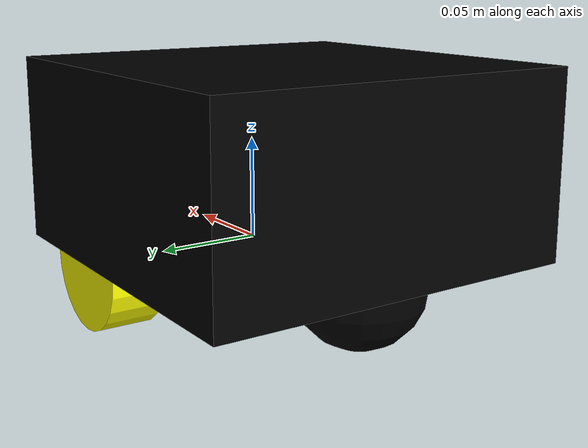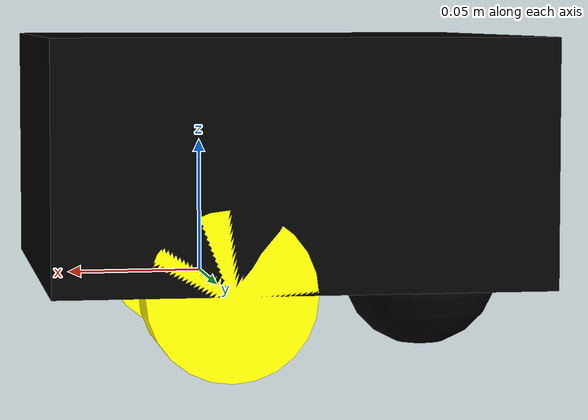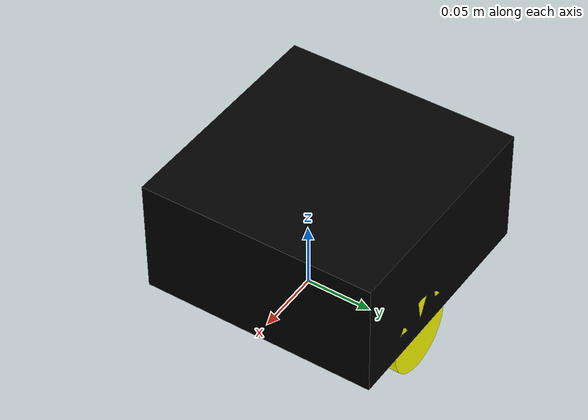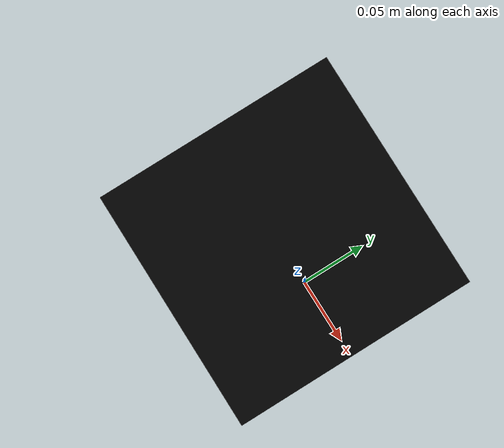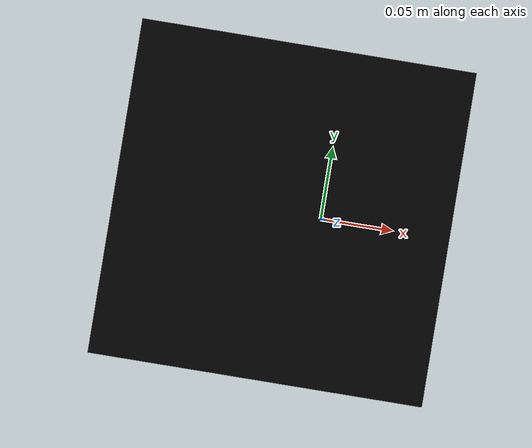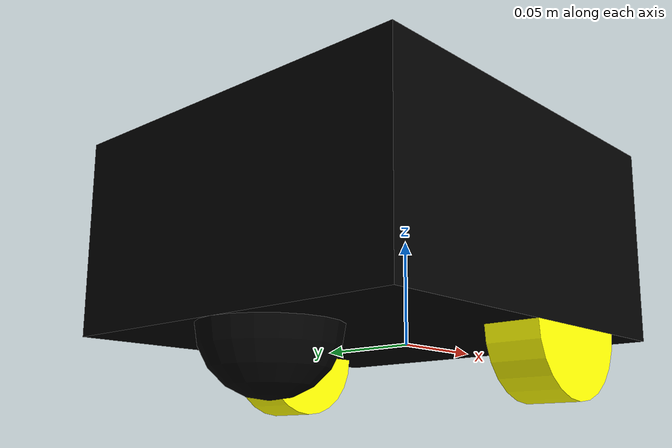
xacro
<?xml version="1.0"?>
<robot xmlns:xacro="http://www.ros.org/wiki/xacro">

    <xacro:include filename="inertial_macros.xacro" />

    <link name="base_link">
    </link>

    <joint name="front_body_joint" type="fixed">
        <parent link="base_link"/>
        <child link="front_body"/>
        <origin xyz="-0.027 0 0.045" rpy="0 0 0"/>
    </joint>

    <link name="front_body">
        <visual>
            <geometry>
                <box size="0.18 0.18 0.09"/>
            </geometry>
            <material name="black">
                <color rgba="0 0 0 1"/>
            </material>
        </visual>
        <collision>
            <geometry>
                <box size="0.18 0.18 0.09"/>
            </geometry>
        </collision>
        <xacro:inertial_box mass="1" x="0.18" y="0.18" z="0.09">
            <origin xyz="0 0 0" rpy="0 0 0"/>
        </xacro:inertial_box>
    </link>

    <gazebo reference="front_body">
        <material>Gazebo/Black</material>
    </gazebo>

    <link name="front_left_wheel">
        <visual>
            <geometry>
                <cylinder radius="0.0305" length="0.025"/>
            </geometry>
            <material name="yellow">
                <color rgba="1 1 0 1"/>
            </material>
        </visual>
        <collision>
            <geometry>
                <cylinder radius="0.0305" length="0.025"/>
            </geometry>
        </collision>
        <xacro:inertial_cylinder mass="0.05" length="0.0025" radius="0.0305">
            <origin xyz="0 0 0" rpy="0 0 0"/>
        </xacro:inertial_cylinder>
    </link>

    <gazebo reference="front_left_wheel">
        <material>Gazebo/Blue</material>
    </gazebo>

    <joint name="front_left_wheel_joint" type="fixed">
        <parent link="base_link"/>
        <child link="front_left_wheel"/>
        <origin xyz="0 0.0775 0" rpy="${-pi/2} 0 0"/>
        <axis xyz="0 0 1"/>
    </joint>

    <link name="front_right_wheel">
        <visual>
            <geometry>
                <cylinder radius="0.0305" length="0.025"/>
            </geometry>
            <material name="yellow">
                <color rgba="1 1 0 1"/>
            </material>
        </visual>
        <collision>
            <geometry>
                <cylinder radius="0.0305" length="0.025"/>
            </geometry>
        </collision>
        <xacro:inertial_cylinder mass="0.05" length="0.0025" radius="0.0305">
            <origin xyz="0 0 0" rpy="0 0 0"/>
        </xacro:inertial_cylinder>
    </link>

    <gazebo reference="front_right_wheel">
        <material>Gazebo/Blue</material>
    </gazebo>

    <joint name="front_right_wheel_joint" type="fixed">
        <parent link="base_link"/>
        <child link="front_right_wheel"/>
        <origin xyz="0 -0.0775 0" rpy="${-pi/2} 0 0"/>
        <axis xyz="0 0 1"/>
    </joint>

    <!-- CASTER WHEEL -->

    <joint name="caster_wheel_joint" type="fixed">
        <parent link="front_body"/>
        <child link="caster_wheel"/>
        <origin xyz="-0.0595 0 -0.045" rpy="0 0 0"/>
    </joint>

    <link name="caster_wheel">
        <visual>
            <geometry>
                <sphere radius="0.0305" />
            </geometry>
            <material name="black"/>
        </visual>
        <collision>
            <geometry>
                <sphere radius="0.0305" />
            </geometry>
        </collision>
        <xacro:inertial_sphere mass="0.1" radius="0.0305">
            <origin xyz="0 0 0" rpy="0 0 0"/>
        </xacro:inertial_sphere>
    </link>

    <gazebo reference="caster_wheel">
        <material>Gazebo/White</material>
            <mu1 value="0.001"/>
            <mu2 value="0.001"/>
    </gazebo>

</robot>
